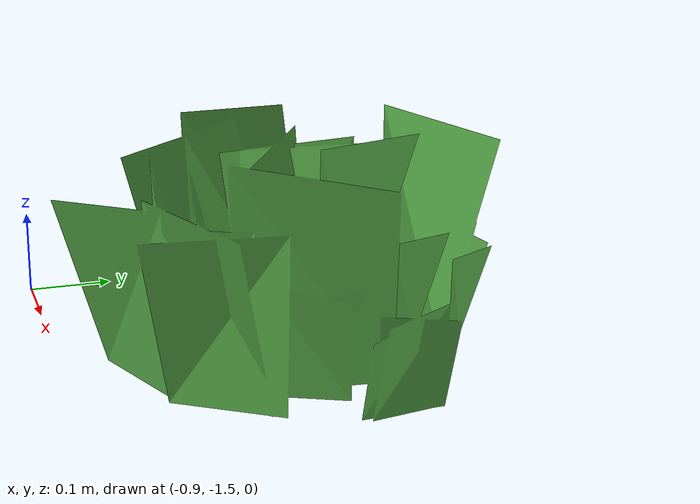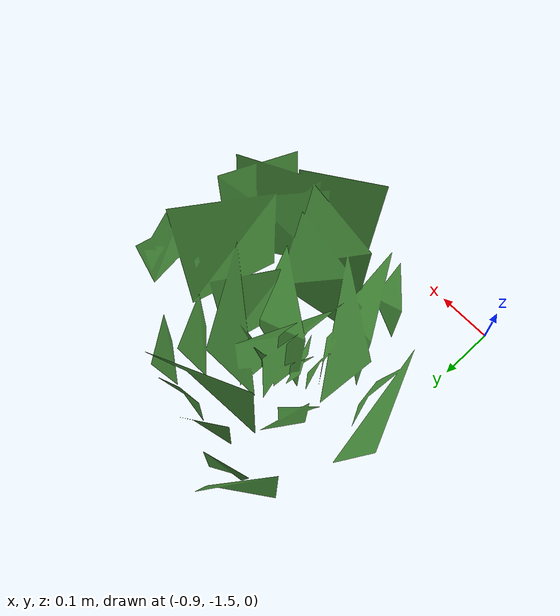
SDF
<?xml version="1.0" ?>
<sdf version='1.5'>
  <model name='grass'>
    <static>true</static>
      <link name='grass'>
        <pose frame=''>0 0 0 0 0 0</pose>
         <collision name='grass'>
          <geometry>
            <mesh>
              <uri>model://grass/grass.dae</uri>
            </mesh>
          </geometry>
        </collision>
        <visual name='grass'>
        <cast_shadows>false</cast_shadows>
          <geometry>
            <mesh>
              <scale>1 1 1</scale>
              <uri>model://grass/grass.dae</uri>
            </mesh>
          </geometry>
          <material>
            <script>
              <name>grass</name>
              <uri>model://grass/grass.dae</uri>
            </script>
          </material>
        </visual>
      </link>
  </model>
</sdf>
